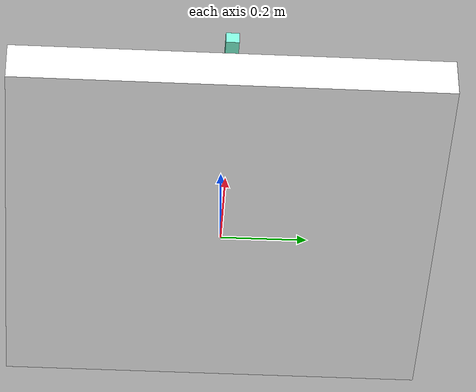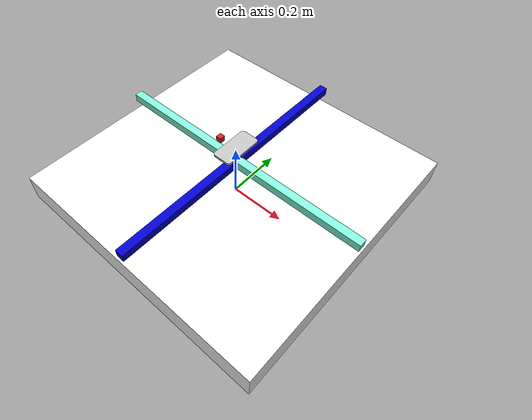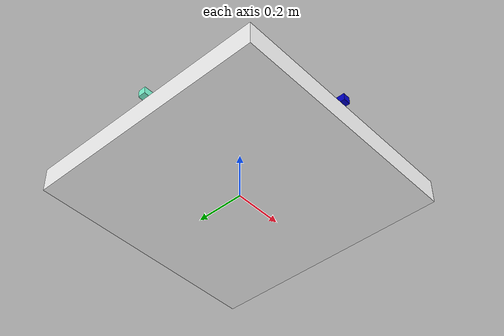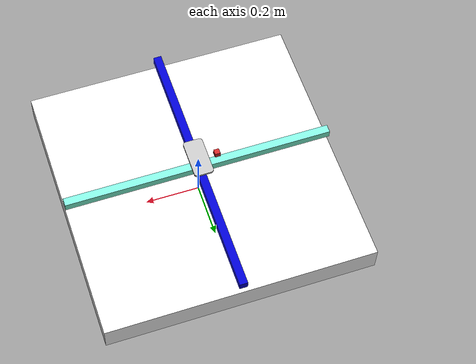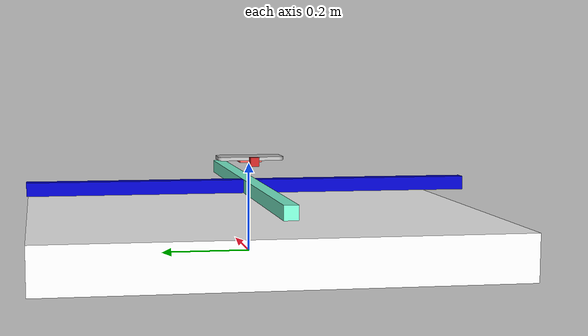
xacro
<?xml version="1.0"?>
<robot xmlns:xacro="http://www.ros.org/wiki/xacro" name="machine_tool" >
    <xacro:include filename="$(find machine_tool_description)/urdf/xacro/common.gazebo.xacro" />

    <material name="Aquamarine1"><color rgba="0.5 1 0.85 1"/></material>
    <material name="white"><color rgba="1 1 1 1"/></material>
    <material name="MediumBlue"><color rgba="0 0 0.8 1"/></material>
    <material name="Tomato"><color rgba="1 0.4 0.36 1"/></material>
    <link name="world"/>

    <link name="base_table">
        <visual>
            <origin xyz="0 0 0" rpy="0 0 0" />
            <geometry>
                <box size="1.0 1.0 0.1" />
            </geometry>
            <material name="white"/>
        </visual>
        <collision>
            <origin xyz="0 0 0" rpy="0 0 0" />
            <geometry>
                <box size="1.0 1.0 0.1" />
            </geometry>
        </collision>
        <inertial>
            <origin xyz="0 0 0" rpy="0 0 0" />
            <mass value="100"/>
            <inertia
                ixx="8.5" ixy="0.0" ixz="0.0"
                iyy="8.5" iyz="0.0"
                izz="17"/>
        </inertial>
        <surface>
            <friction>
                <ode>
                <mu>100</mu>
                <mu2>100</mu2>
                </ode>
            </friction>
        </surface>
    </link>

    <joint name="fixed" type="fixed">
        <origin xyz="0 0 0.05" rpy="0 0 0" />
        <parent link="world"/>
        <child link="base_table"/>
    </joint>

    <link name="x_axle">
        <visual>
            <origin xyz="0 0 0" rpy="0 0 0" />
            <geometry>
                <box size="1.0 0.03 0.03" />
            </geometry>
            <material name="Aquamarine1"/>
        </visual>
        <collision>
            <origin xyz="0 0 0" rpy="0 0 0" />
            <geometry>
                <box size="1.0 0.03 0.03" />
            </geometry>
        </collision>
        <inertial>
            <origin xyz="0 0 0" rpy="0 0 0" />
            <mass value="0.1"/>
            <inertia
                ixx="0.00001" ixy="0.0" ixz="0.0"
                iyy="0.00001" iyz="0.0"
                izz="0.00001"/>
        </inertial>
        <surface>
            <friction>
                <ode>
                <mu>100</mu>
                <mu2>100</mu2>
                </ode>
            </friction>
        </surface>
    </link>

    <joint name="x_joint" type="prismatic">
       <origin xyz="0 0 0.1" rpy="0 0 0"></origin>
        <parent link="base_table" />
        <child link="x_axle"/>
        <axis xyz="1 0 0" />
        <limit effort="30" velocity="100.0" lower="-0.5" upper="0.5" />
    </joint>

    <link name="y_axle">
        <visual>
            <origin xyz="0 0 0" rpy="0 0 0" />
            <geometry>
                <box size="0.03 1.0 0.03" />
            </geometry>
            <material name="MediumBlue"/>
        </visual>
        <collision>
            <origin xyz="0 0 0" rpy="0 0 0" />
            <geometry>
                <box size="0.03 1.0 0.03" />
            </geometry>
        </collision>
        <inertial>
            <origin xyz="0 0 0" rpy="0 0 0" />
            <mass value="0.1"/>
            <inertia
                ixx="0.00001" ixy="0.0" ixz="0.0"
                iyy="0.00001" iyz="0.0"
                izz="0.00001"/>
        </inertial>
        <surface>
            <friction>
                <ode>
                <mu>100</mu>
                <mu2>100</mu2>
                </ode>
            </friction>
        </surface>
    </link>

    <joint name="y_joint" type="prismatic">
       <origin xyz="0 0 0" rpy="0 0 0"></origin>
        <parent link="x_axle" />
        <child link="y_axle"/>
        <axis xyz="0 1 0" />
        <limit effort="30" velocity="100.0" lower="-0.5" upper="0.5" />
    </joint>

    <link name="plate">
        <visual>
            <origin xyz="0 0 0" rpy="0 0 0" />
            <geometry>
                <box size="0.05 0.05 0.01" />
            </geometry>
            <material name="Tomato"/>
        </visual>
        <collision>
            <origin xyz="0 0 0" rpy="0 0 0" />
            <geometry>
                <box size="0.2 0.2 0.05" />
            </geometry>
        </collision>
        <inertial>
            <origin xyz="0 0 0" rpy="0 0 0" />
            <mass value="0.1"/>
            <inertia
                ixx="0.00001" ixy="0.0" ixz="0.0"
                iyy="0.00001" iyz="0.0"
                izz="0.00001"/>
        </inertial>
        <surface>
            <friction>
                <ode>
                <mu>100</mu>
                <mu2>100</mu2>
                </ode>
            </friction>
        </surface>
    </link>

    <joint name="r_joint" type="revolute">
        <origin xyz="0 0 0.06" rpy="0 0 0"></origin>
        <parent link="y_axle" />
        <child link="plate"/>
        <axis xyz="0 0 1" />
        <limit effort="30" velocity="100.0" lower="-20" upper="20" />
    </joint>

    <link name="iphone">
      <visual>
        <geometry>
          <mesh filename="package://machine_tool_description/meshes/iphone/test_model.STL" scale = "0.001 0.001 0.001" />
        </geometry>
        <material name="LightGrey">
          <color rgba="0.75294 0.75294 0.75294 1" />
        </material>
      </visual>
      <collision>
        <geometry>
            <box size="0.1 0.1 0.05" />
        </geometry>
      </collision>
      <inertial>
        <mass value="0.034" />
        <origin xyz="0.0 0.0 0.0" />
        <inertia ixx = "0.0022573" ixy = "0.000000" ixz = "0.000000"
                iyx = "0.000000" iyy = "0.0038711" iyz = "0.0003245"
                izx = "0.000000" izy = "0.0003245" izz = "0.0023745" />
      </inertial>
    </link>

    <joint name="plate_joine" type="fixed">
        <origin xyz="-0.0358 0.07353 0" rpy="1.5707963 0 0"></origin>
        <parent link="plate" />
        <child link="iphone"/>
        <axis xyz="0 0 1" />
    </joint>

  <!-- Camera -->
  <link name="camera_link">
    <collision>
      <origin xyz="0 0 0" rpy="0 0 0"/>
      <geometry>
    <box size="0.02 0.02 0.02"/>
      </geometry>
    </collision>

    <visual>
      <origin xyz="0 0 0" rpy="0 0 0"/>
      <geometry>
    <box size="0.02 0.02 0.02"/>
      </geometry>
      <material name="red"/>
    </visual>

    <inertial>
      <mass value="1e-5" />
      <origin xyz="0 0 0" rpy="0 0 0"/>
      <inertia ixx="1e-6" ixy="0" ixz="0" iyy="1e-6" iyz="0" izz="1e-6" />
    </inertial>
  </link>

  <joint name="camera_joint" type="fixed">
    <axis xyz="1 0 0" />
    <origin xyz="-0.07 0.0 0.16" rpy="0 0 0"/>
    <parent link="base_table"/>
    <child link="camera_link"/>
  </joint>

  <!-- camera -->
  <gazebo reference="camera_link">
    <sensor type="camera" name="camera1">
      <update_rate>30.0</update_rate>
      <camera name="head">
        <horizontal_fov>1.3962634</horizontal_fov>
        <image>
          <width>800</width>
          <height>800</height>
          <format>R8G8B8</format>
        </image>
        <clip>
          <near>0.02</near>
          <far>300</far>
        </clip>
        <noise>
          <type>gaussian</type>
          <!-- Noise is sampled independently per pixel on each frame.
               That pixel's noise value is added to each of its color
               channels, which at that point lie in the range [0,1]. -->
          <mean>0.0</mean>
          <stddev>0.007</stddev>
        </noise>
      </camera>
      <plugin name="camera_controller" filename="libgazebo_ros_camera.so">
        <alwaysOn>true</alwaysOn>
        <updateRate>0.0</updateRate>
        <cameraName>camera1</cameraName>
        <imageTopicName>image_raw</imageTopicName>
        <cameraInfoTopicName>camera_info</cameraInfoTopicName>
        <frameName>camera_link</frameName>
        <hackBaseline>0.07</hackBaseline>
        <distortionK1>0.0</distortionK1>
        <distortionK2>0.0</distortionK2>
        <distortionK3>0.0</distortionK3>
        <distortionT1>0.0</distortionT1>
        <distortionT2>0.0</distortionT2>
      </plugin>
    </sensor>
  </gazebo>

    <transmission name="x_joint_trans">
      <type>transmission_interface/SimpleTransmission</type>
      <joint name="x_joint">
      <hardwareInterface>hardware_interface/PositionJointInterface</hardwareInterface>
      </joint>
      <actuator name="x_joint_motor">
      <hardwareInterface>hardware_interface/PositionJointInterface</hardwareInterface>
        <mechanicalReduction>1</mechanicalReduction>
      </actuator>
    </transmission>

    <transmission name="y_joint_trans">
      <type>transmission_interface/SimpleTransmission</type>
      <joint name="y_joint">
      <hardwareInterface>hardware_interface/PositionJointInterface</hardwareInterface>
      </joint>
      <actuator name="y_joint_motor">
      <hardwareInterface>hardware_interface/PositionJointInterface</hardwareInterface>
        <mechanicalReduction>1</mechanicalReduction>
      </actuator>
    </transmission>

    <transmission name="r_joint_trans">
      <type>transmission_interface/SimpleTransmission</type>
      <joint name="r_joint">
      <hardwareInterface>hardware_interface/PositionJointInterface</hardwareInterface>
      </joint>
      <actuator name="r_joint_motor">
      <hardwareInterface>hardware_interface/PositionJointInterface</hardwareInterface>
        <mechanicalReduction>1</mechanicalReduction>
      </actuator>
    </transmission>
    <gazebo>
      <plugin name="p3d_base_controller" filename="libgazebo_ros_p3d.so">
        <alwaysOn>true</alwaysOn>
        <updateRate>50.0</updateRate>
        <bodyName>plate</bodyName>
        <topicName>plate_ground_truth</topicName>
        <gaussianNoise>0.0</gaussianNoise>
        <frameName>world</frameName>
        <xyzOffsets>0 0 0</xyzOffsets>
        <rpyOffsets>0 0 0</rpyOffsets>
      </plugin>
    </gazebo>

</robot>
